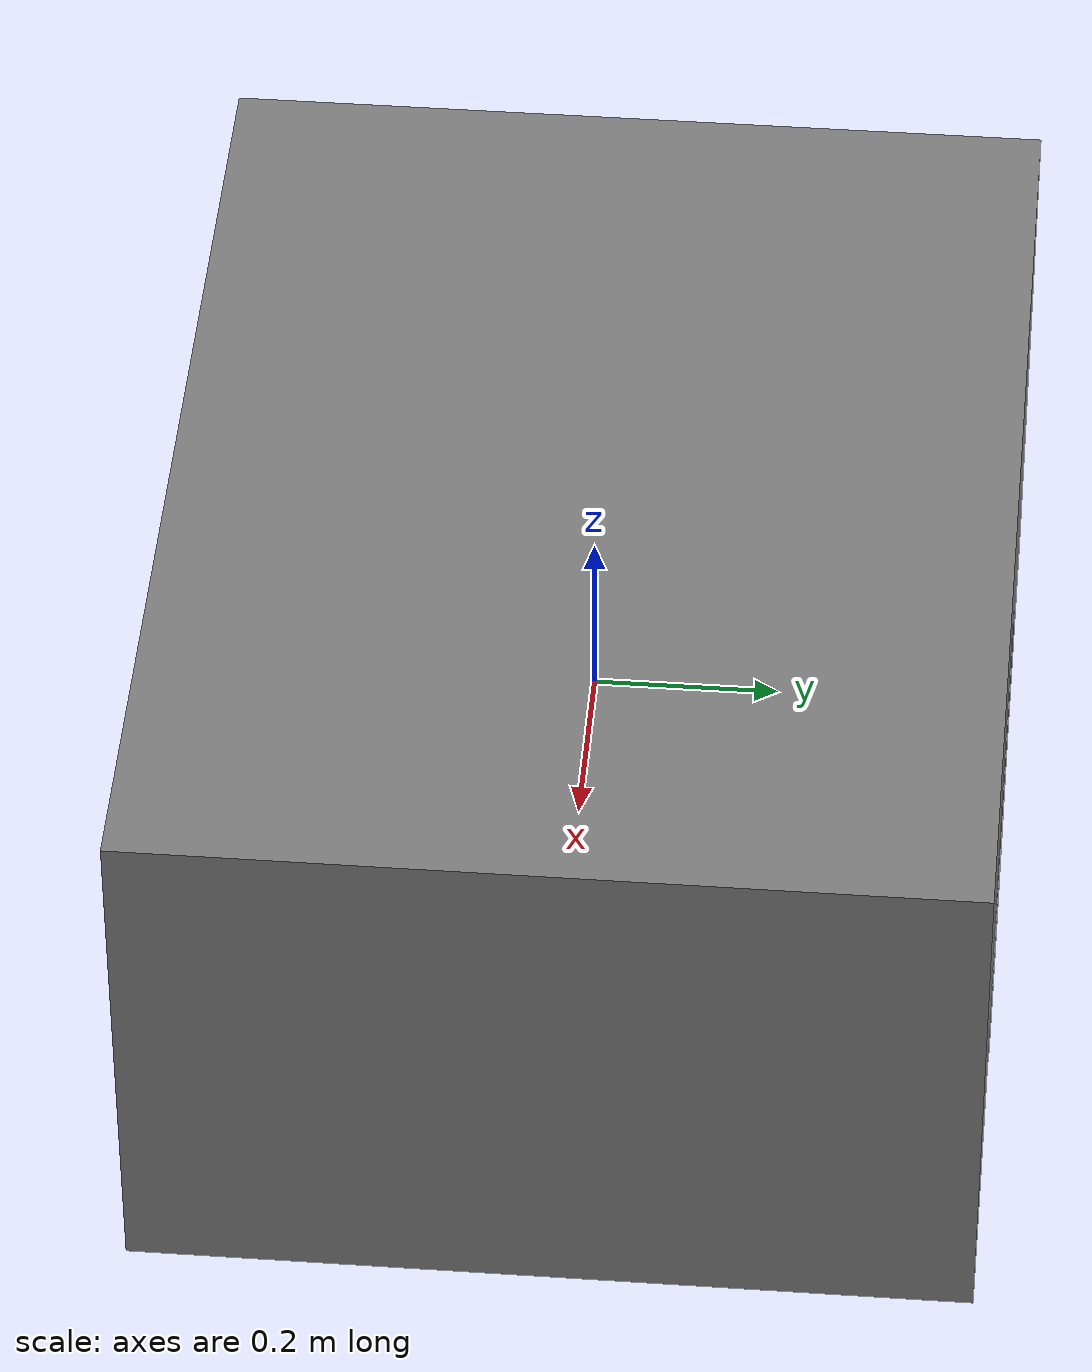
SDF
<?xml version="1.0" ?>
<sdf version="1.7">
    <!-- Agricultural Ground Robot Model -->
    <model name="agricultural_ground_robot">
        <static>false</static>

        <!-- Main body link -->
        <link name="base_link">
            <inertial>
                <mass>100.0</mass>
                <inertia>
                    <ixx>8.33</ixx>
                    <iyy>8.33</iyy>
                    <izz>13.33</izz>
                    <ixy>0.0</ixy>
                    <ixz>0.0</ixz>
                    <iyz>0.0</iyz>
                </inertia>
            </inertial>

            <collision name="base_collision">
                <geometry>
                    <box>
                        <size>1.2 0.9 0.6</size>
                    </box>
                </geometry>
                <surface>
                    <friction>
                        <ode>
                            <mu>0.8</mu>
                            <mu2>0.8</mu2>
                        </ode>
                    </friction>
                </surface>
            </collision>

            <visual name="base_visual">
                <geometry>
                    <box>
                        <size>1.2 0.9 0.6</size>
                    </box>
                </geometry>
                <material>
                    <ambient>0.5 0.5 0.5 1</ambient>
                    <diffuse>0.5 0.5 0.5 1</diffuse>
                    <specular>0.1 0.1 0.1 1</specular>
                </material>
            </visual>

            <!-- RGBD Camera Sensor -->
            <sensor name="front_camera" type="rgbd_camera">
                <update_rate>30</update_rate>
                <camera>
                    <horizontal_fov>1.047</horizontal_fov>
                    <image>
                        <width>1280</width>
                        <height>720</height>
                        <format>R8G8B8</format>
                    </image>
                    <clip>
                        <near>0.1</near>
                        <far>100</far>
                    </clip>
                    <noise>
                        <type>gaussian</type>
                        <mean>0.0</mean>
                        <stddev>0.02</stddev>
                    </noise>
                </camera>
                <pose>0.5 0.0 0.4 0 0 0</pose>
            </sensor>

            <!-- IMU Sensor -->
            <sensor name="robot_imu" type="imu">
                <update_rate>100</update_rate>
                <imu>
                    <angular_velocity>
                        <x>
                            <noise type="gaussian">
                                <mean>0.0</mean>
                                <stddev>0.007</stddev>
                                <bias_mean>0.001</bias_mean>
                            </noise>
                        </x>
                        <y>
                            <noise type="gaussian">
                                <mean>0.0</mean>
                                <stddev>0.007</stddev>
                                <bias_mean>0.001</bias_mean>
                            </noise>
                        </y>
                        <z>
                            <noise type="gaussian">
                                <mean>0.0</mean>
                                <stddev>0.007</stddev>
                                <bias_mean>0.001</bias_mean>
                            </noise>
                        </z>
                    </angular_velocity>
                    <linear_acceleration>
                        <x>
                            <noise type="gaussian">
                                <mean>0.0</mean>
                                <stddev>0.007</stddev>
                                <bias_mean>0.002</bias_mean>
                            </noise>
                        </x>
                        <y>
                            <noise type="gaussian">
                                <mean>0.0</mean>
                                <stddev>0.007</stddev>
                                <bias_mean>0.002</bias_mean>
                            </noise>
                        </y>
                        <z>
                            <noise type="gaussian">
                                <mean>0.0</mean>
                                <stddev>0.007</stddev>
                                <bias_mean>0.002</bias_mean>
                            </noise>
                        </z>
                    </linear_acceleration>
                </imu>
            </sensor>

            <!-- GPS Sensor -->
            <sensor name="robot_gps" type="gps">
                <update_rate>10</update_rate>
                <gps>
                    <position_sensing>
                        <horizontal>
                            <noise type="gaussian">
                                <mean>0.0</mean>
                                <stddev>2.5</stddev>
                            </noise>
                        </horizontal>
                        <vertical>
                            <noise type="gaussian">
                                <mean>0.0</mean>
                                <stddev>2.5</stddev>
                            </noise>
                        </vertical>
                    </position_sensing>
                    <velocity_sensing>
                        <horizontal>
                            <noise type="gaussian">
                                <mean>0.0</mean>
                                <stddev>0.1</stddev>
                            </noise>
                        </horizontal>
                    </velocity_sensing>
                </gps>
            </sensor>
        </link>

        <!-- Left Wheel -->
        <link name="left_wheel">
            <pose>0 0.4 -0.2 1.5707 0 0</pose>
            <inertial>
                <mass>5.0</mass>
                <inertia>
                    <ixx>0.1</ixx>
                    <iyy>0.1</iyy>
                    <izz>0.1</izz>
                </inertia>
            </inertial>
            <collision name="left_wheel_collision">
                <geometry>
                    <cylinder>
                        <radius>0.25</radius>
                        <length>0.1</length>
                    </cylinder>
                </geometry>
                <surface>
                    <friction>
                        <ode>
                            <mu>0.8</mu>
                            <mu2>0.8</mu2>
                        </ode>
                    </friction>
                </surface>
            </collision>
            <visual name="left_wheel_visual">
                <geometry>
                    <cylinder>
                        <radius>0.25</radius>
                        <length>0.1</length>
                    </cylinder>
                </geometry>
            </visual>
        </link>

        <!-- Right Wheel -->
        <link name="right_wheel">
            <pose>0 -0.4 -0.2 1.5707 0 0</pose>
            <inertial>
                <mass>5.0</mass>
                <inertia>
                    <ixx>0.1</ixx>
                    <iyy>0.1</iyy>
                    <izz>0.1</izz>
                </inertia>
            </inertial>
            <collision name="right_wheel_collision">
                <geometry>
                    <cylinder>
                        <radius>0.25</radius>
                        <length>0.1</length>
                    </cylinder>
                </geometry>
                <surface>
                    <friction>
                        <ode>
                            <mu>0.8</mu>
                            <mu2>0.8</mu2>
                        </ode>
                    </friction>
                </surface>
            </collision>
            <visual name="right_wheel_visual">
                <geometry>
                    <cylinder>
                        <radius>0.25</radius>
                        <length>0.1</length>
                    </cylinder>
                </geometry>
            </visual>
        </link>

        <!-- Wheel Joints -->
        <joint name="left_wheel_joint" type="revolute">
            <parent>base_link</parent>
            <child>left_wheel</child>
            <axis>
                <xyz>0 1 0</xyz>
                <limit>
                    <velocity>2.0</velocity>
                    <effort>40.0</effort>
                </limit>
            </axis>
        </joint>

        <joint name="right_wheel_joint" type="revolute">
            <parent>base_link</parent>
            <child>right_wheel</child>
            <axis>
                <xyz>0 1 0</xyz>
                <limit>
                    <velocity>2.0</velocity>
                    <effort>40.0</effort>
                </limit>
            </axis>
        </joint>

        <!-- Robot Controller Plugin -->
        <plugin name="ground_robot_controller" filename="librobotController.so">
            <update_rate>100</update_rate>
            <max_thrust>40.0</max_thrust>
            <max_torque>20.0</max_torque>
            <terrain_adaptation>
                <enabled>true</enabled>
                <response_rate>0.5</response_rate>
                <stability_margin>0.3</stability_margin>
            </terrain_adaptation>
            <safety_limits>
                <max_slope>30.0</max_slope>
                <min_clearance>0.1</min_clearance>
                <emergency_stop_decel>2.0</emergency_stop_decel>
            </safety_limits>
        </plugin>

        <!-- Sensor Suite Plugin -->
        <plugin name="sensor_suite" filename="libsensorPlugin.so">
            <camera_update_rate>30.0</camera_update_rate>
            <imu_update_rate>100.0</imu_update_rate>
            <gps_update_rate>10.0</gps_update_rate>
            <sensor_fusion>
                <enabled>true</enabled>
                <kalman_filter_params>
                    <process_noise>0.01</process_noise>
                    <measurement_noise>0.02</measurement_noise>
                </kalman_filter_params>
            </sensor_fusion>
        </plugin>
    </model>
</sdf>
